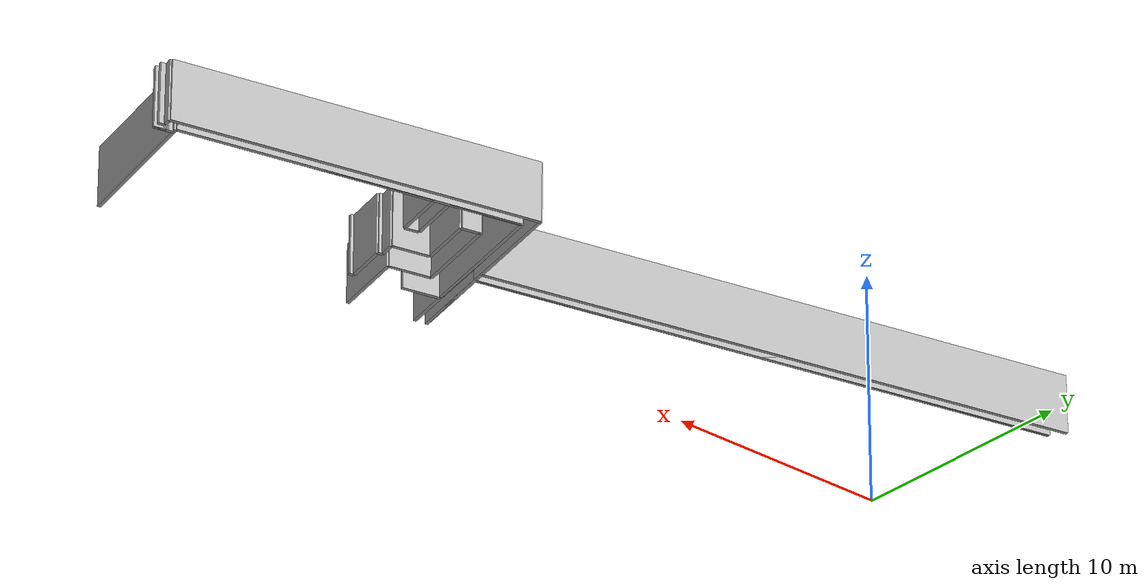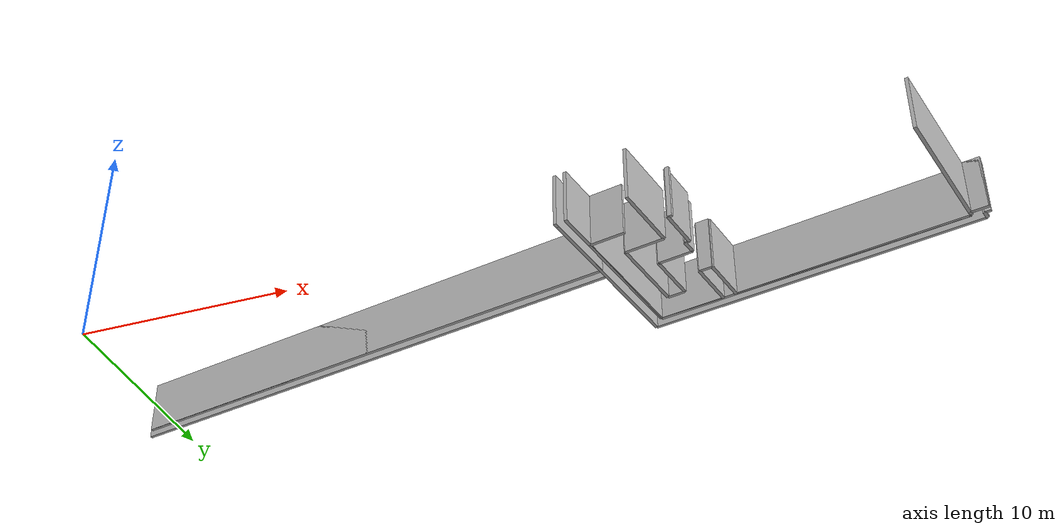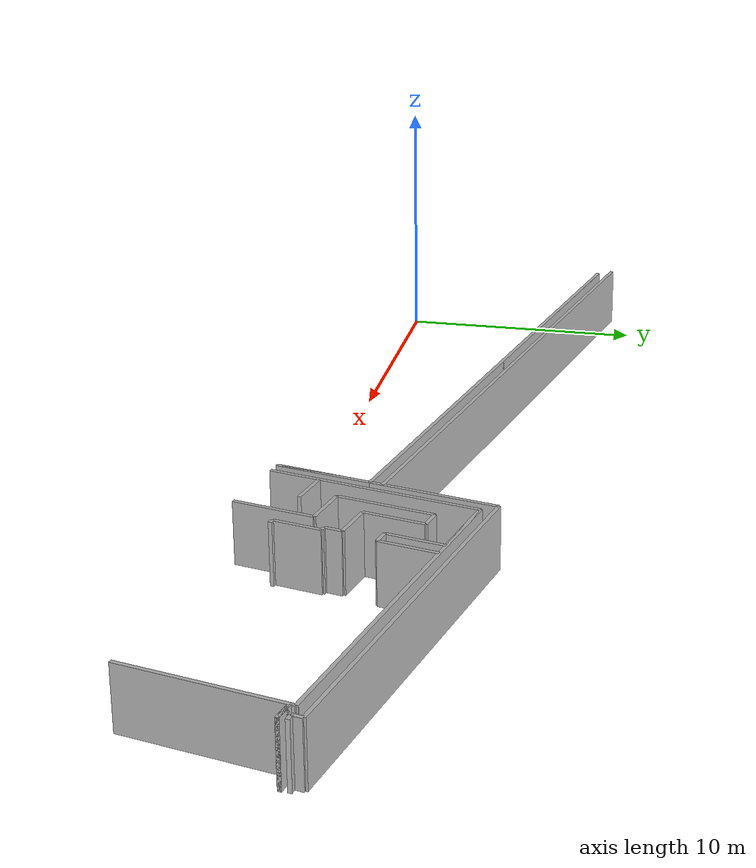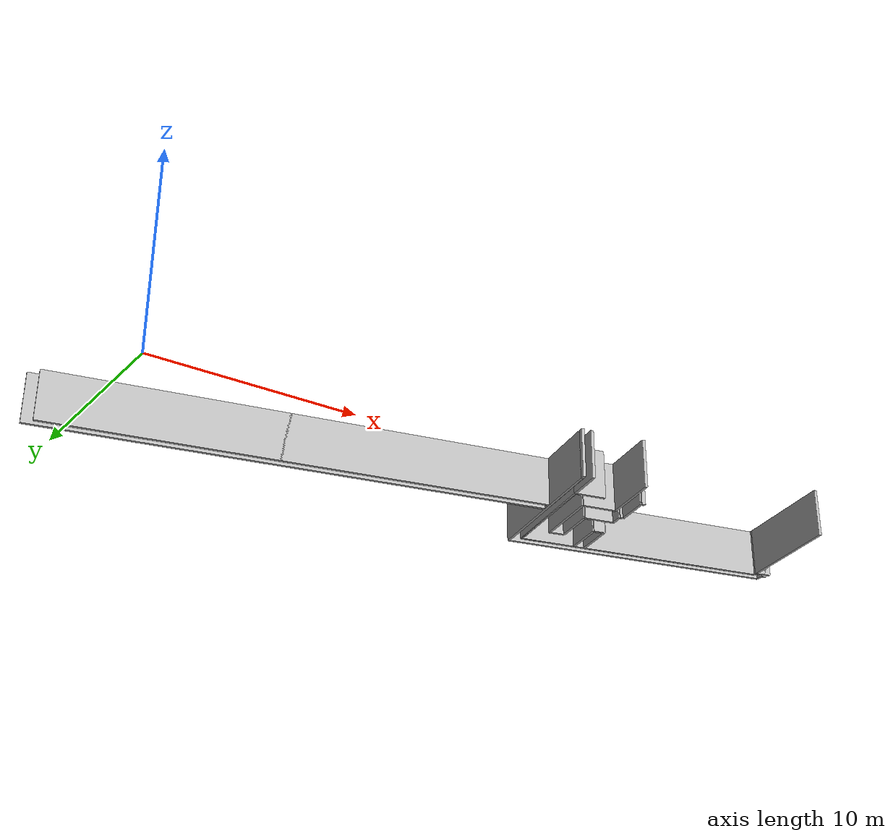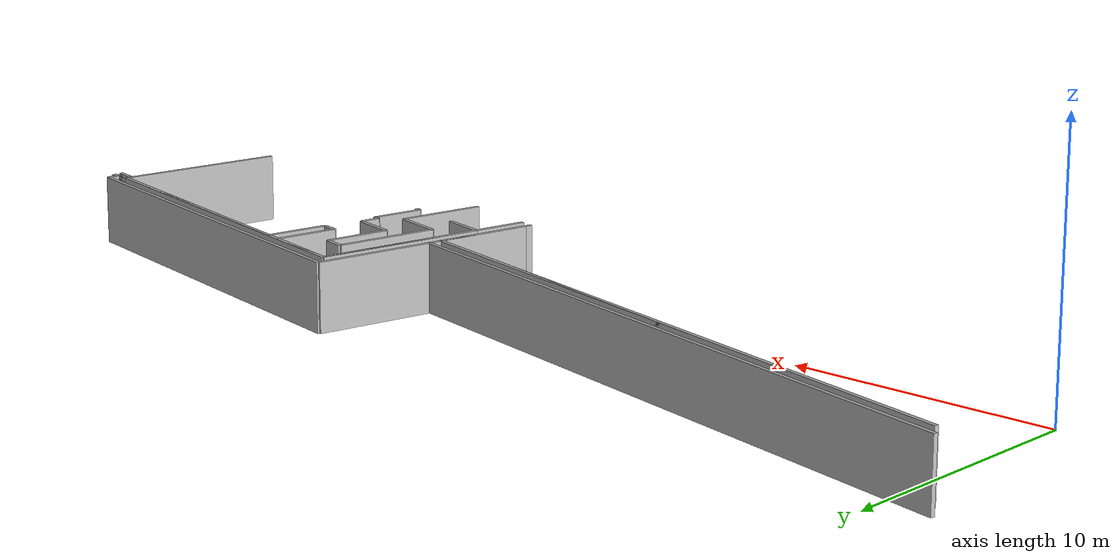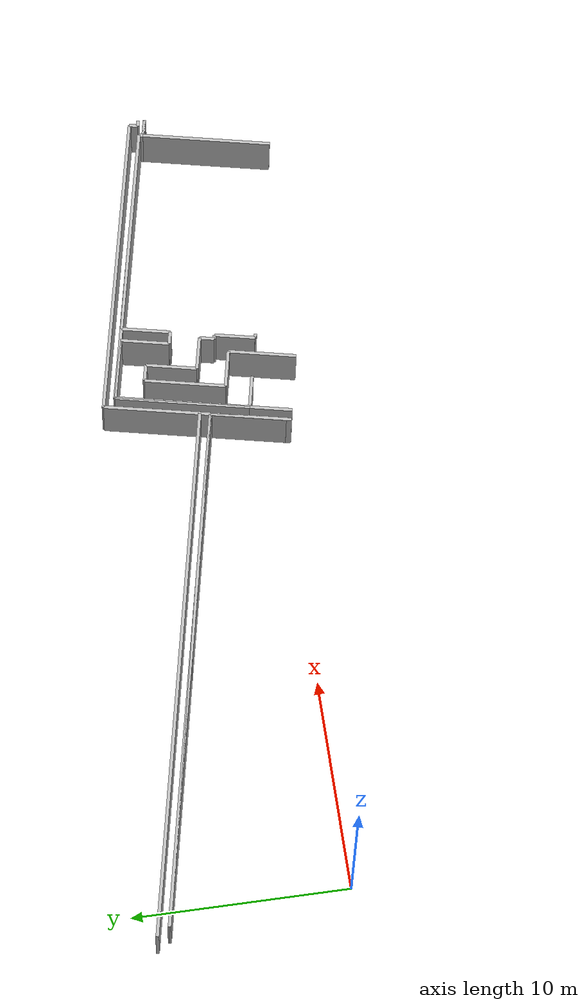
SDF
<?xml version="1.0" ?>
<sdf version="1.6">
  <model name="sps_2205">
    <pose frame="">0 0 0 0 -0 0</pose>
    <static>1</static>
    <self_collide>0</self_collide>
    <allow_auto_disable>0</allow_auto_disable>
    <link name="Wall212">
      <kinematic>0</kinematic>
      <gravity>1</gravity>
      <self_collide>0</self_collide>
      <collision name="collision">
        <geometry>
          <box>
            <size>25.5003 0.15 2.5</size>
          </box>
        </geometry>
        <pose frame="">0 0 0 0 -0 0</pose>
      </collision>
      <visual name="visual">
        <geometry>
          <box>
            <size>25.5003 0.15 2.5</size>
          </box>
        </geometry>
        <pose frame="">0 0 0 0 -0 0</pose>
        <cast_shadows>1</cast_shadows>
        <transparency>0.0</transparency>
      </visual>
      <pose frame="">10.6955 6.31019 1.25 0 -0 2.92734</pose>
    </link>
    <link name="Wall213">
      <kinematic>0</kinematic>
      <gravity>1</gravity>
      <self_collide>0</self_collide>
      <collision name="collision">
        <geometry>
          <box>
            <size>2.39975 0.15 2.5</size>
          </box>
        </geometry>
        <pose frame="">0 0 0 0 -0 0</pose>
      </collision>
      <visual name="visual">
        <geometry>
          <box>
            <size>2.39975 0.15 2.5</size>
          </box>
        </geometry>
        <pose frame="">0 0 0 0 -0 0</pose>
        <cast_shadows>1</cast_shadows>
        <transparency>0.0</transparency>
      </visual>
      <pose frame="">25.7178 4.57979 1.25 0 0 -1.78488</pose>
    </link>
    <link name="Wall215">
      <kinematic>0</kinematic>
      <gravity>1</gravity>
      <self_collide>0</self_collide>
      <collision name="collision">
        <geometry>
          <box>
            <size>0.199428 0.15 2.5</size>
          </box>
        </geometry>
        <pose frame="">0 0 0 0 -0 0</pose>
      </collision>
      <visual name="visual">
        <geometry>
          <box>
            <size>0.199428 0.15 2.5</size>
          </box>
        </geometry>
        <pose frame="">0 0 0 0 -0 0</pose>
        <cast_shadows>1</cast_shadows>
        <transparency>0.0</transparency>
      </visual>
      <pose frame="">26.7663 0.462966 1.25 0 0 -0.215283</pose>
    </link>
    <link name="Wall216">
      <kinematic>0</kinematic>
      <gravity>1</gravity>
      <self_collide>0</self_collide>
      <collision name="collision">
        <geometry>
          <box>
            <size>0.600601 0.15 2.5</size>
          </box>
        </geometry>
        <pose frame="">0 0 0 0 -0 0</pose>
      </collision>
      <visual name="visual">
        <geometry>
          <box>
            <size>0.600601 0.15 2.5</size>
          </box>
        </geometry>
        <pose frame="">0 0 0 0 -0 0</pose>
        <cast_shadows>1</cast_shadows>
        <transparency>0.0</transparency>
      </visual>
      <pose frame="">27.226 4.4565 1.25 0 0 -0.214855</pose>
    </link>
    <link name="Wall217">
      <kinematic>0</kinematic>
      <gravity>1</gravity>
      <self_collide>0</self_collide>
      <collision name="collision">
        <geometry>
          <box>
            <size>2.30021 0.15 2.5</size>
          </box>
        </geometry>
        <pose frame="">0 0 0 0 -0 0</pose>
      </collision>
      <visual name="visual">
        <geometry>
          <box>
            <size>2.30021 0.15 2.5</size>
          </box>
        </geometry>
        <pose frame="">0 0 0 0 -0 0</pose>
        <cast_shadows>1</cast_shadows>
        <transparency>0.0</transparency>
      </visual>
      <pose frame="">27.7635 5.51637 1.25 0 -0 1.35692</pose>
    </link>
    <link name="Wall812">
      <kinematic>0</kinematic>
      <gravity>1</gravity>
      <self_collide>0</self_collide>
      <collision name="collision">
        <geometry>
          <box>
            <size>0.699651 0.15 2.5</size>
          </box>
        </geometry>
        <pose frame="">0 0 0 0 -0 0</pose>
      </collision>
      <visual name="visual">
        <geometry>
          <box>
            <size>0.699651 0.15 2.5</size>
          </box>
        </geometry>
        <pose frame="">0 0 0 0 -0 0</pose>
        <cast_shadows>1</cast_shadows>
        <transparency>0.0</transparency>
      </visual>
      <pose frame="">26.9514 2.7252 1.25 0 0 -1.78422</pose>
    </link>
    <link name="Wall1142">
      <kinematic>0</kinematic>
      <gravity>1</gravity>
      <self_collide>0</self_collide>
      <collision name="collision">
        <geometry>
          <box>
            <size>1.60052 0.15 2.5</size>
          </box>
        </geometry>
        <pose frame="">0 0 0 0 -0 0</pose>
      </collision>
      <visual name="visual">
        <geometry>
          <box>
            <size>1.60052 0.15 2.5</size>
          </box>
        </geometry>
        <pose frame="">0 0 0 0 -0 0</pose>
        <cast_shadows>1</cast_shadows>
        <transparency>0.0</transparency>
      </visual>
      <pose frame="">23.9322 1.07979 1.25 0 -0 2.92763</pose>
    </link>
    <link name="Wall1143">
      <kinematic>0</kinematic>
      <gravity>1</gravity>
      <self_collide>0</self_collide>
      <collision name="collision">
        <geometry>
          <box>
            <size>2.99992 0.15 2.5</size>
          </box>
        </geometry>
        <pose frame="">0 0 0 0 -0 0</pose>
      </collision>
      <visual name="visual">
        <geometry>
          <box>
            <size>2.99992 0.15 2.5</size>
          </box>
        </geometry>
        <pose frame="">0 0 0 0 -0 0</pose>
        <cast_shadows>1</cast_shadows>
        <transparency>0.0</transparency>
      </visual>
      <pose frame="">25.956 7.0869 1.25 0 0 -0.214434</pose>
    </link>
    <link name="Wall1418">
      <kinematic>0</kinematic>
      <gravity>1</gravity>
      <self_collide>0</self_collide>
      <collision name="collision">
        <geometry>
          <box>
            <size>3.79805 0.15 2.5</size>
          </box>
        </geometry>
        <pose frame="">0 0 0 0 -0 0</pose>
      </collision>
      <visual name="visual">
        <geometry>
          <box>
            <size>3.79805 0.15 2.5</size>
          </box>
        </geometry>
        <pose frame="">0 0 0 0 -0 0</pose>
        <cast_shadows>1</cast_shadows>
        <transparency>0.0</transparency>
      </visual>
      <pose frame="">22.6439 1.25529 1.25 0 0 -1.78501</pose>
    </link>
    <link name="Wall1419">
      <kinematic>0</kinematic>
      <gravity>1</gravity>
      <self_collide>0</self_collide>
      <collision name="collision">
        <geometry>
          <box>
            <size>24.9999 0.15 2.5</size>
          </box>
        </geometry>
        <pose frame="">0 0 0 0 -0 0</pose>
      </collision>
      <visual name="visual">
        <geometry>
          <box>
            <size>24.9999 0.15 2.5</size>
          </box>
        </geometry>
        <pose frame="">0 0 0 0 -0 0</pose>
        <cast_shadows>1</cast_shadows>
        <transparency>0.0</transparency>
      </visual>
      <pose frame="">10.8335 5.7686 1.25 0 -0 2.92734</pose>
    </link>
    <link name="Wall1420">
      <kinematic>0</kinematic>
      <gravity>1</gravity>
      <self_collide>0</self_collide>
      <collision name="collision">
        <geometry>
          <box>
            <size>8.55054 0.15 2.5</size>
          </box>
        </geometry>
        <pose frame="">0 0 0 0 -0 0</pose>
      </collision>
      <visual name="visual">
        <geometry>
          <box>
            <size>8.55054 0.15 2.5</size>
          </box>
        </geometry>
        <pose frame="">0 0 0 0 -0 0</pose>
        <cast_shadows>1</cast_shadows>
        <transparency>0.0</transparency>
      </visual>
      <pose frame="">23.1994 3.82338 1.25 0 0 -1.78508</pose>
    </link>
    <link name="Wall1423">
      <kinematic>0</kinematic>
      <gravity>1</gravity>
      <self_collide>0</self_collide>
      <collision name="collision">
        <geometry>
          <box>
            <size>2.29978 0.15 2.5</size>
          </box>
        </geometry>
        <pose frame="">0 0 0 0 -0 0</pose>
      </collision>
      <visual name="visual">
        <geometry>
          <box>
            <size>2.29978 0.15 2.5</size>
          </box>
        </geometry>
        <pose frame="">0 0 0 0 -0 0</pose>
        <cast_shadows>1</cast_shadows>
        <transparency>0.0</transparency>
      </visual>
      <pose frame="">27.1771 5.64412 1.25 0 0 -1.78507</pose>
    </link>
    <link name="Wall1425">
      <kinematic>0</kinematic>
      <gravity>1</gravity>
      <self_collide>0</self_collide>
      <collision name="collision">
        <geometry>
          <box>
            <size>0.199568 0.15 2.5</size>
          </box>
        </geometry>
        <pose frame="">0 0 0 0 -0 0</pose>
      </collision>
      <visual name="visual">
        <geometry>
          <box>
            <size>0.199568 0.15 2.5</size>
          </box>
        </geometry>
        <pose frame="">0 0 0 0 -0 0</pose>
        <cast_shadows>1</cast_shadows>
        <transparency>0.0</transparency>
      </visual>
      <pose frame="">38.1481 4.33177 1.25 0 0 -1.78499</pose>
    </link>
    <link name="Wall1732">
      <kinematic>0</kinematic>
      <gravity>1</gravity>
      <self_collide>0</self_collide>
      <collision name="collision">
        <geometry>
          <box>
            <size>3.79959 0.15 2.5</size>
          </box>
        </geometry>
        <pose frame="">0 0 0 0 -0 0</pose>
      </collision>
      <visual name="visual">
        <geometry>
          <box>
            <size>3.79959 0.15 2.5</size>
          </box>
        </geometry>
        <pose frame="">0 0 0 0 -0 0</pose>
        <cast_shadows>1</cast_shadows>
        <transparency>0.0</transparency>
      </visual>
      <pose frame="">24.7873 4.0663 1.25 0 -0 1.35661</pose>
    </link>
    <link name="Wall1733">
      <kinematic>0</kinematic>
      <gravity>1</gravity>
      <self_collide>0</self_collide>
      <collision name="collision">
        <geometry>
          <box>
            <size>0.799977 0.15 2.5</size>
          </box>
        </geometry>
        <pose frame="">0 0 0 0 -0 0</pose>
      </collision>
      <visual name="visual">
        <geometry>
          <box>
            <size>0.799977 0.15 2.5</size>
          </box>
        </geometry>
        <pose frame="">0 0 0 0 -0 0</pose>
        <cast_shadows>1</cast_shadows>
        <transparency>0.0</transparency>
      </visual>
      <pose frame="">25.5819 5.83748 1.25 0 0 -0.214664</pose>
    </link>
    <link name="Wall1735">
      <kinematic>0</kinematic>
      <gravity>1</gravity>
      <self_collide>0</self_collide>
      <collision name="collision">
        <geometry>
          <box>
            <size>0.199329 0.15 2.5</size>
          </box>
        </geometry>
        <pose frame="">0 0 0 0 -0 0</pose>
      </collision>
      <visual name="visual">
        <geometry>
          <box>
            <size>0.199329 0.15 2.5</size>
          </box>
        </geometry>
        <pose frame="">0 0 0 0 -0 0</pose>
        <cast_shadows>1</cast_shadows>
        <transparency>0.0</transparency>
      </visual>
      <pose frame="">26.9747 2.36211 1.25 0 0 -0.214451</pose>
    </link>
    <link name="Wall1736">
      <kinematic>0</kinematic>
      <gravity>1</gravity>
      <self_collide>0</self_collide>
      <collision name="collision">
        <geometry>
          <box>
            <size>10.3994 0.15 2.5</size>
          </box>
        </geometry>
        <pose frame="">0 0 0 0 -0 0</pose>
      </collision>
      <visual name="visual">
        <geometry>
          <box>
            <size>10.3994 0.15 2.5</size>
          </box>
        </geometry>
        <pose frame="">0 0 0 0 -0 0</pose>
        <cast_shadows>1</cast_shadows>
        <transparency>0.0</transparency>
      </visual>
      <pose frame="">33.0885 5.53477 1.25 0 0 -0.214244</pose>
    </link>
    <link name="Wall1737">
      <kinematic>0</kinematic>
      <gravity>1</gravity>
      <self_collide>0</self_collide>
      <collision name="collision">
        <geometry>
          <box>
            <size>0.825063 0.15 2.5</size>
          </box>
        </geometry>
        <pose frame="">0 0 0 0 -0 0</pose>
      </collision>
      <visual name="visual">
        <geometry>
          <box>
            <size>0.825063 0.15 2.5</size>
          </box>
        </geometry>
        <pose frame="">0 0 0 0 -0 0</pose>
        <cast_shadows>1</cast_shadows>
        <transparency>0.0</transparency>
      </visual>
      <pose frame="">38.53 4.14659 1.25 0 -0 2.92743</pose>
    </link>
    <link name="Wall1738">
      <kinematic>0</kinematic>
      <gravity>1</gravity>
      <self_collide>0</self_collide>
      <collision name="collision">
        <geometry>
          <box>
            <size>0.279934 0.15 2.5</size>
          </box>
        </geometry>
        <pose frame="">0 0 0 0 -0 0</pose>
      </collision>
      <visual name="visual">
        <geometry>
          <box>
            <size>0.279934 0.15 2.5</size>
          </box>
        </geometry>
        <pose frame="">0 0 0 0 -0 0</pose>
        <cast_shadows>1</cast_shadows>
        <transparency>0.0</transparency>
      </visual>
      <pose frame="">38.8176 4.4012 1.25 0 0 -0.143963</pose>
    </link>
    <link name="Wall2037">
      <kinematic>0</kinematic>
      <gravity>1</gravity>
      <self_collide>0</self_collide>
      <collision name="collision">
        <geometry>
          <box>
            <size>3.19973 0.15 2.5</size>
          </box>
        </geometry>
        <pose frame="">0 0 0 0 -0 0</pose>
      </collision>
      <visual name="visual">
        <geometry>
          <box>
            <size>3.19973 0.15 2.5</size>
          </box>
        </geometry>
        <pose frame="">0 0 0 0 -0 0</pose>
        <cast_shadows>1</cast_shadows>
        <transparency>0.0</transparency>
      </visual>
      <pose frame="">25.8016 0.263381 1.25 0 -0 1.35657</pose>
    </link>
    <link name="Wall2038">
      <kinematic>0</kinematic>
      <gravity>1</gravity>
      <self_collide>0</self_collide>
      <collision name="collision">
        <geometry>
          <box>
            <size>1.79952 0.15 2.5</size>
          </box>
        </geometry>
        <pose frame="">0 0 0 0 -0 0</pose>
      </collision>
      <visual name="visual">
        <geometry>
          <box>
            <size>1.79952 0.15 2.5</size>
          </box>
        </geometry>
        <pose frame="">0 0 0 0 -0 0</pose>
        <cast_shadows>1</cast_shadows>
        <transparency>0.0</transparency>
      </visual>
      <pose frame="">25.2626 2.01829 1.25 0 -0 2.92698</pose>
    </link>
    <link name="Wall2044">
      <kinematic>0</kinematic>
      <gravity>1</gravity>
      <self_collide>0</self_collide>
      <collision name="collision">
        <geometry>
          <box>
            <size>14.9987 0.15 2.5</size>
          </box>
        </geometry>
        <pose frame="">0 0 0 0 -0 0</pose>
      </collision>
      <visual name="visual">
        <geometry>
          <box>
            <size>14.9987 0.15 2.5</size>
          </box>
        </geometry>
        <pose frame="">0 0 0 0 -0 0</pose>
        <cast_shadows>1</cast_shadows>
        <transparency>0.0</transparency>
      </visual>
      <pose frame="">31.4363 6.40599 1.25 0 -0 2.92729</pose>
    </link>
    <link name="Wall2365">
      <kinematic>0</kinematic>
      <gravity>1</gravity>
      <self_collide>0</self_collide>
      <collision name="collision">
        <geometry>
          <box>
            <size>6.30056 0.15 2.5</size>
          </box>
        </geometry>
        <pose frame="">0 0 0 0 -0 0</pose>
      </collision>
      <visual name="visual">
        <geometry>
          <box>
            <size>6.30056 0.15 2.5</size>
          </box>
        </geometry>
        <pose frame="">0 0 0 0 -0 0</pose>
        <cast_shadows>1</cast_shadows>
        <transparency>0.0</transparency>
      </visual>
      <pose frame="">23.8203 4.3279 1.25 0 -0 1.35645</pose>
    </link>
    <link name="Wall2367">
      <kinematic>0</kinematic>
      <gravity>1</gravity>
      <self_collide>0</self_collide>
      <collision name="collision">
        <geometry>
          <box>
            <size>1.59923 0.15 2.5</size>
          </box>
        </geometry>
        <pose frame="">0 0 0 0 -0 0</pose>
      </collision>
      <visual name="visual">
        <geometry>
          <box>
            <size>1.59923 0.15 2.5</size>
          </box>
        </geometry>
        <pose frame="">0 0 0 0 -0 0</pose>
        <cast_shadows>1</cast_shadows>
        <transparency>0.0</transparency>
      </visual>
      <pose frame="">26.2442 3.2372 1.25 0 0 -0.214372</pose>
    </link>
    <link name="Wall2368">
      <kinematic>0</kinematic>
      <gravity>1</gravity>
      <self_collide>0</self_collide>
      <collision name="collision">
        <geometry>
          <box>
            <size>1.8999 0.15 2.5</size>
          </box>
        </geometry>
        <pose frame="">0 0 0 0 -0 0</pose>
      </collision>
      <visual name="visual">
        <geometry>
          <box>
            <size>1.8999 0.15 2.5</size>
          </box>
        </geometry>
        <pose frame="">0 0 0 0 -0 0</pose>
        <cast_shadows>1</cast_shadows>
        <transparency>0.0</transparency>
      </visual>
      <pose frame="">26.8704 1.41258 1.25 0 0 -1.78464</pose>
    </link>
    <link name="Wall2370">
      <kinematic>0</kinematic>
      <gravity>1</gravity>
      <self_collide>0</self_collide>
      <collision name="collision">
        <geometry>
          <box>
            <size>0.398995 0.15 2.5</size>
          </box>
        </geometry>
        <pose frame="">0 0 0 0 -0 0</pose>
      </collision>
      <visual name="visual">
        <geometry>
          <box>
            <size>0.398995 0.15 2.5</size>
          </box>
        </geometry>
        <pose frame="">0 0 0 0 -0 0</pose>
        <cast_shadows>1</cast_shadows>
        <transparency>0.0</transparency>
      </visual>
      <pose frame="">38.7215 4.61619 1.25 0 -0 1.35606</pose>
    </link>
    <link name="Wall5971">
      <kinematic>0</kinematic>
      <gravity>1</gravity>
      <self_collide>0</self_collide>
      <collision name="collision">
        <geometry>
          <box>
            <size>6.10009 0.15 2.5</size>
          </box>
        </geometry>
        <pose frame="">0 0 0 0 -0 0</pose>
      </collision>
      <visual name="visual">
        <geometry>
          <box>
            <size>6.10009 0.15 2.5</size>
          </box>
        </geometry>
        <pose frame="">0 0 0 0 -0 0</pose>
        <cast_shadows>1</cast_shadows>
        <transparency>0.0</transparency>
      </visual>
      <pose frame="">37.4783 1.25398 1.25 0 -0 1.35651</pose>
    </link>
    <link name="Wall5972">
      <kinematic>0</kinematic>
      <gravity>1</gravity>
      <self_collide>0</self_collide>
      <collision name="collision">
        <geometry>
          <box>
            <size>0.825063 0.15 2.5</size>
          </box>
        </geometry>
        <pose frame="">0 0 0 0 -0 0</pose>
      </collision>
      <visual name="visual">
        <geometry>
          <box>
            <size>0.825063 0.15 2.5</size>
          </box>
        </geometry>
        <pose frame="">0 0 0 0 -0 0</pose>
        <cast_shadows>1</cast_shadows>
        <transparency>0.0</transparency>
      </visual>
      <pose frame="">38.53 4.14659 1.25 0 0 -0.214168</pose>
    </link>
    <link name="Wall10475">
      <kinematic>0</kinematic>
      <gravity>1</gravity>
      <self_collide>0</self_collide>
      <collision name="collision">
        <geometry>
          <box>
            <size>8.29987 0.15 2.5</size>
          </box>
        </geometry>
        <pose frame="">0 0 0 0 -0 0</pose>
      </collision>
      <visual name="visual">
        <geometry>
          <box>
            <size>8.29987 0.15 2.5</size>
          </box>
        </geometry>
        <pose frame="">0 0 0 0 -0 0</pose>
        <cast_shadows>1</cast_shadows>
        <transparency>0.0</transparency>
      </visual>
      <pose frame="">23.6078 3.35109 1.25 0 -0 1.35648</pose>
    </link>
    <link name="Wall10476">
      <kinematic>0</kinematic>
      <gravity>1</gravity>
      <self_collide>0</self_collide>
      <collision name="collision">
        <geometry>
          <box>
            <size>13.999 0.15 2.5</size>
          </box>
        </geometry>
        <pose frame="">0 0 0 0 -0 0</pose>
      </collision>
      <visual name="visual">
        <geometry>
          <box>
            <size>13.999 0.15 2.5</size>
          </box>
        </geometry>
        <pose frame="">0 0 0 0 -0 0</pose>
        <cast_shadows>1</cast_shadows>
        <transparency>0.0</transparency>
      </visual>
      <pose frame="">31.3299 5.91768 1.25 0 0 -0.21428</pose>
    </link>
    <link name="Wall14356">
      <kinematic>0</kinematic>
      <gravity>1</gravity>
      <self_collide>0</self_collide>
      <collision name="collision">
        <geometry>
          <box>
            <size>24.9999 0.15 2.5</size>
          </box>
        </geometry>
        <pose frame="">0 0 0 0 -0 0</pose>
      </collision>
      <visual name="visual">
        <geometry>
          <box>
            <size>24.9999 0.15 2.5</size>
          </box>
        </geometry>
        <pose frame="">0 0 0 0 -0 0</pose>
        <cast_shadows>1</cast_shadows>
        <transparency>0.0</transparency>
      </visual>
      <pose frame="">10.8335 5.7686 1.25 0 0 -0.214251</pose>
    </link>
  </model>
</sdf>
